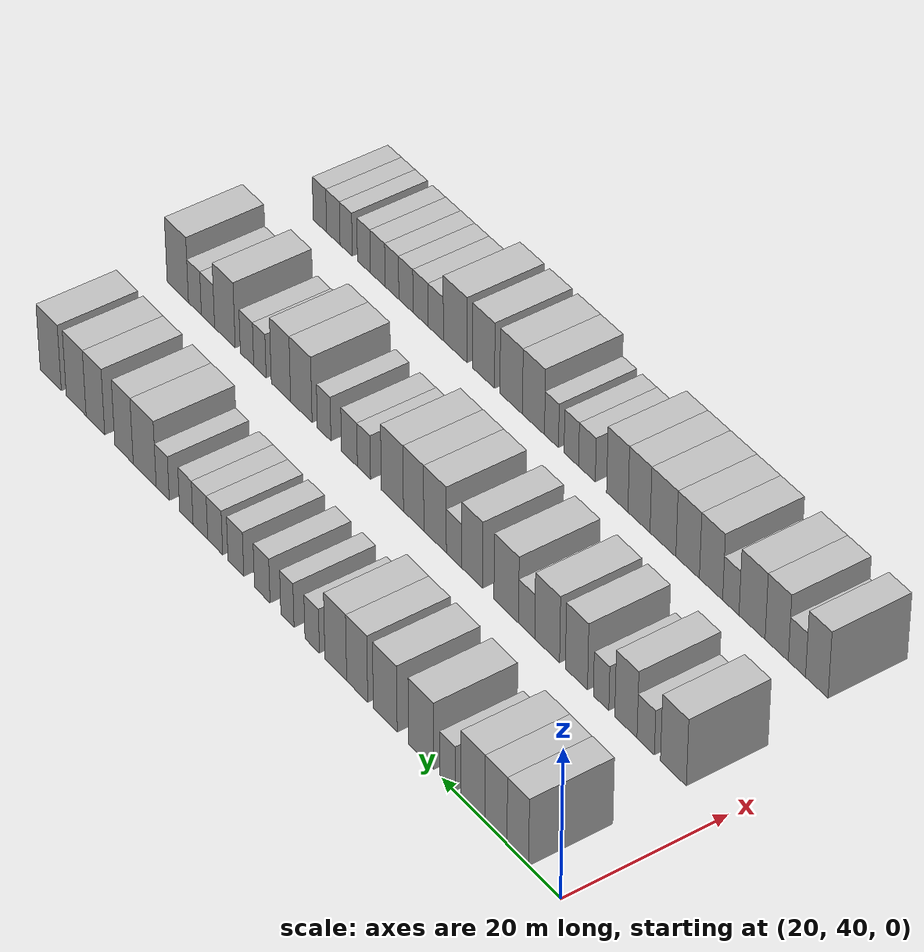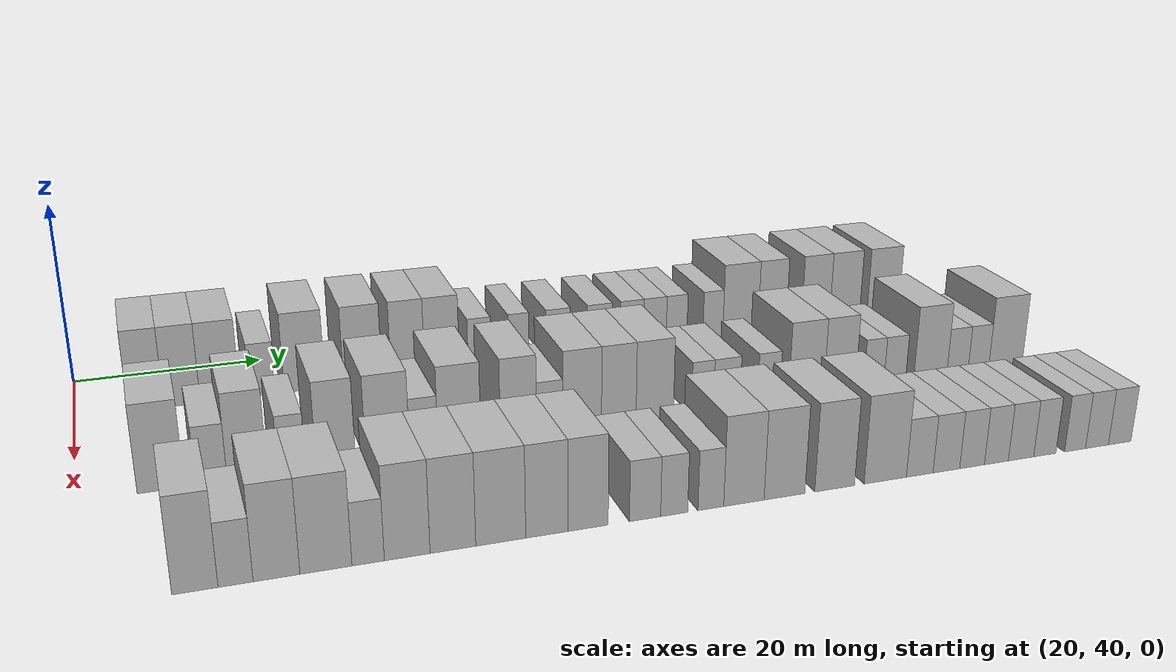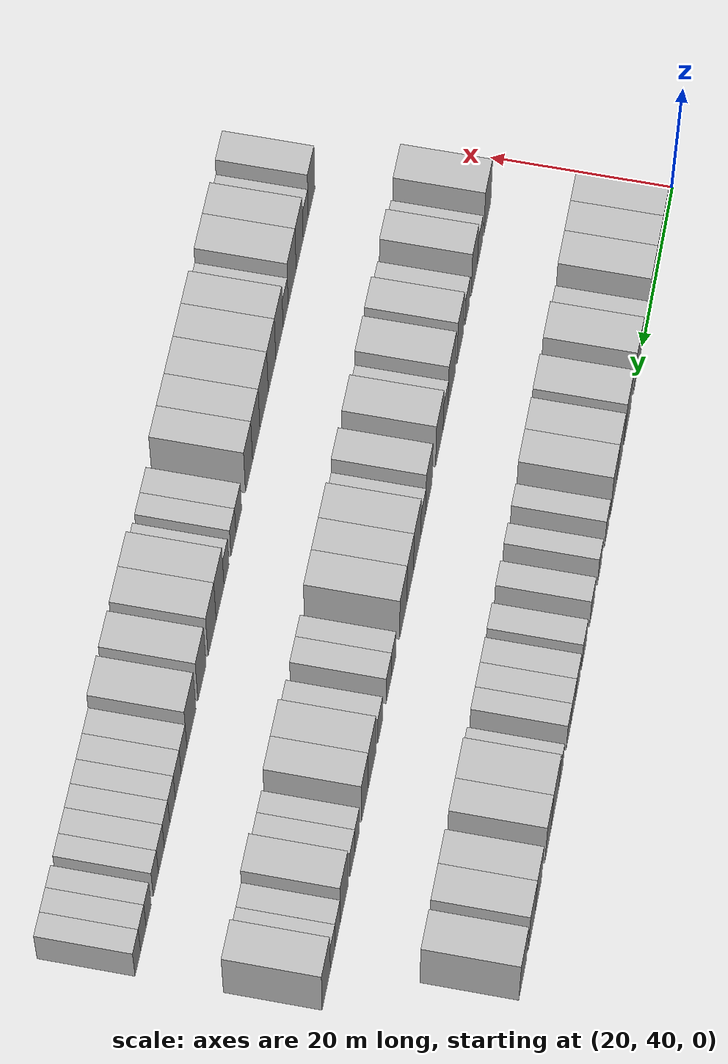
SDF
<sdf version="1.6">
 <world name="default">
  <model name="building_75">
   <static>1</static>
   <pose>25.0000 47.1595 0 0.000000 0.000000 0.000000</pose>
   <link name="link">
    <pose>0 0 4.50 0 0 0</pose>
    <collision name="collision"><geometry><box><size>10.0000 3.6271 9.0000</size></box></geometry></collision>
    <visual name="visual">
     <cast_shadows>0</cast_shadows>
     <geometry><box><size>10.0000 3.6271 9.0000</size></box></geometry>
     <material>
      <script>
       <uri>model://HANNAS_wall/materials/scripts</uri>
       <uri>model://HANNAS_wall/materials/textures</uri>
       <name>vrc/HANNAS_wall</name>
      </script>
     </material>
    </visual>
   </link>
  </model>
  <model name="building_76">
   <static>1</static>
   <pose>25.0000 50.8339 0 0.000000 0.000000 0.000000</pose>
   <link name="link">
    <pose>0 0 4.50 0 0 0</pose>
    <collision name="collision"><geometry><box><size>10.0000 3.7219 9.0000</size></box></geometry></collision>
    <visual name="visual">
     <cast_shadows>0</cast_shadows>
     <geometry><box><size>10.0000 3.7219 9.0000</size></box></geometry>
     <material>
      <script>
       <uri>model://HANNAS_wall/materials/scripts</uri>
       <uri>model://HANNAS_wall/materials/textures</uri>
       <name>vrc/HANNAS_wall</name>
      </script>
     </material>
    </visual>
   </link>
  </model>
  <model name="building_77">
   <static>1</static>
   <pose>25.0000 54.7527 0 0.000000 0.000000 0.000000</pose>
   <link name="link">
    <pose>0 0 4.50 0 0 0</pose>
    <collision name="collision"><geometry><box><size>10.0000 4.1156 9.0000</size></box></geometry></collision>
    <visual name="visual">
     <cast_shadows>0</cast_shadows>
     <geometry><box><size>10.0000 4.1156 9.0000</size></box></geometry>
     <material>
      <script>
       <uri>model://HANNAS_wall/materials/scripts</uri>
       <uri>model://HANNAS_wall/materials/textures</uri>
       <name>vrc/HANNAS_wall</name>
      </script>
     </material>
    </visual>
   </link>
  </model>
  <model name="building_78">
   <static>1</static>
   <pose>25.0000 59.1419 0 0.000000 0.000000 0.000000</pose>
   <link name="link">
    <pose>0 0 3.00 0 0 0</pose>
    <collision name="collision"><geometry><box><size>10.0000 2.6629 6.0000</size></box></geometry></collision>
    <visual name="visual">
     <cast_shadows>0</cast_shadows>
     <geometry><box><size>10.0000 2.6629 6.0000</size></box></geometry>
     <material>
      <script>
       <uri>model://HANNAS_wall/materials/scripts</uri>
       <uri>model://HANNAS_wall/materials/textures</uri>
       <name>vrc/HANNAS_wall</name>
      </script>
     </material>
    </visual>
   </link>
  </model>
  <model name="building_79">
   <static>1</static>
   <pose>25.0000 63.6639 0 0.000000 0.000000 0.000000</pose>
   <link name="link">
    <pose>0 0 4.50 0 0 0</pose>
    <collision name="collision"><geometry><box><size>10.0000 4.3811 9.0000</size></box></geometry></collision>
    <visual name="visual">
     <cast_shadows>0</cast_shadows>
     <geometry><box><size>10.0000 4.3811 9.0000</size></box></geometry>
     <material>
      <script>
       <uri>model://HANNAS_wall/materials/scripts</uri>
       <uri>model://HANNAS_wall/materials/textures</uri>
       <name>vrc/HANNAS_wall</name>
      </script>
     </material>
    </visual>
   </link>
  </model>
  <model name="building_80">
   <static>1</static>
   <pose>25.0000 69.9615 0 0.000000 0.000000 0.000000</pose>
   <link name="link">
    <pose>0 0 4.50 0 0 0</pose>
    <collision name="collision"><geometry><box><size>10.0000 4.2141 9.0000</size></box></geometry></collision>
    <visual name="visual">
     <cast_shadows>0</cast_shadows>
     <geometry><box><size>10.0000 4.2141 9.0000</size></box></geometry>
     <material>
      <script>
       <uri>model://HANNAS_wall/materials/scripts</uri>
       <uri>model://HANNAS_wall/materials/textures</uri>
       <name>vrc/HANNAS_wall</name>
      </script>
     </material>
    </visual>
   </link>
  </model>
  <model name="building_81">
   <static>1</static>
   <pose>25.0000 74.9460 0 0.000000 0.000000 0.000000</pose>
   <link name="link">
    <pose>0 0 4.50 0 0 0</pose>
    <collision name="collision"><geometry><box><size>10.0000 3.7549 9.0000</size></box></geometry></collision>
    <visual name="visual">
     <cast_shadows>0</cast_shadows>
     <geometry><box><size>10.0000 3.7549 9.0000</size></box></geometry>
     <material>
      <script>
       <uri>model://HANNAS_wall/materials/scripts</uri>
       <uri>model://HANNAS_wall/materials/textures</uri>
       <name>vrc/HANNAS_wall</name>
      </script>
     </material>
    </visual>
   </link>
  </model>
  <model name="building_82">
   <static>1</static>
   <pose>25.0000 78.7865 0 0.000000 0.000000 0.000000</pose>
   <link name="link">
    <pose>0 0 4.50 0 0 0</pose>
    <collision name="collision"><geometry><box><size>10.0000 3.9260 9.0000</size></box></geometry></collision>
    <visual name="visual">
     <cast_shadows>0</cast_shadows>
     <geometry><box><size>10.0000 3.9260 9.0000</size></box></geometry>
     <material>
      <script>
       <uri>model://HANNAS_wall/materials/scripts</uri>
       <uri>model://HANNAS_wall/materials/textures</uri>
       <name>vrc/HANNAS_wall</name>
      </script>
     </material>
    </visual>
   </link>
  </model>
  <model name="building_83">
   <static>1</static>
   <pose>25.0000 83.0642 0 0.000000 0.000000 0.000000</pose>
   <link name="link">
    <pose>0 0 3.00 0 0 0</pose>
    <collision name="collision"><geometry><box><size>10.0000 2.6295 6.0000</size></box></geometry></collision>
    <visual name="visual">
     <cast_shadows>0</cast_shadows>
     <geometry><box><size>10.0000 2.6295 6.0000</size></box></geometry>
     <material>
      <script>
       <uri>model://HANNAS_wall/materials/scripts</uri>
       <uri>model://HANNAS_wall/materials/textures</uri>
       <name>vrc/HANNAS_wall</name>
      </script>
     </material>
    </visual>
   </link>
  </model>
  <model name="building_84">
   <static>1</static>
   <pose>25.0000 87.5899 0 0.000000 0.000000 0.000000</pose>
   <link name="link">
    <pose>0 0 3.00 0 0 0</pose>
    <collision name="collision"><geometry><box><size>10.0000 2.4218 6.0000</size></box></geometry></collision>
    <visual name="visual">
     <cast_shadows>0</cast_shadows>
     <geometry><box><size>10.0000 2.4218 6.0000</size></box></geometry>
     <material>
      <script>
       <uri>model://HANNAS_wall/materials/scripts</uri>
       <uri>model://HANNAS_wall/materials/textures</uri>
       <name>vrc/HANNAS_wall</name>
      </script>
     </material>
    </visual>
   </link>
  </model>
  <model name="building_85">
   <static>1</static>
   <pose>25.0000 92.2433 0 0.000000 0.000000 0.000000</pose>
   <link name="link">
    <pose>0 0 3.00 0 0 0</pose>
    <collision name="collision"><geometry><box><size>10.0000 2.8849 6.0000</size></box></geometry></collision>
    <visual name="visual">
     <cast_shadows>0</cast_shadows>
     <geometry><box><size>10.0000 2.8849 6.0000</size></box></geometry>
     <material>
      <script>
       <uri>model://HANNAS_wall/materials/scripts</uri>
       <uri>model://HANNAS_wall/materials/textures</uri>
       <name>vrc/HANNAS_wall</name>
      </script>
     </material>
    </visual>
   </link>
  </model>
  <model name="building_86">
   <static>1</static>
   <pose>25.0000 97.1684 0 0.000000 0.000000 0.000000</pose>
   <link name="link">
    <pose>0 0 3.00 0 0 0</pose>
    <collision name="collision"><geometry><box><size>10.0000 2.9652 6.0000</size></box></geometry></collision>
    <visual name="visual">
     <cast_shadows>0</cast_shadows>
     <geometry><box><size>10.0000 2.9652 6.0000</size></box></geometry>
     <material>
      <script>
       <uri>model://HANNAS_wall/materials/scripts</uri>
       <uri>model://HANNAS_wall/materials/textures</uri>
       <name>vrc/HANNAS_wall</name>
      </script>
     </material>
    </visual>
   </link>
  </model>
  <model name="building_87">
   <static>1</static>
   <pose>25.0000 101.0687 0 0.000000 0.000000 0.000000</pose>
   <link name="link">
    <pose>0 0 3.00 0 0 0</pose>
    <collision name="collision"><geometry><box><size>10.0000 2.8354 6.0000</size></box></geometry></collision>
    <visual name="visual">
     <cast_shadows>0</cast_shadows>
     <geometry><box><size>10.0000 2.8354 6.0000</size></box></geometry>
     <material>
      <script>
       <uri>model://HANNAS_wall/materials/scripts</uri>
       <uri>model://HANNAS_wall/materials/textures</uri>
       <name>vrc/HANNAS_wall</name>
      </script>
     </material>
    </visual>
   </link>
  </model>
  <model name="building_88">
   <static>1</static>
   <pose>25.0000 103.8853 0 0.000000 0.000000 0.000000</pose>
   <link name="link">
    <pose>0 0 3.00 0 0 0</pose>
    <collision name="collision"><geometry><box><size>10.0000 2.7978 6.0000</size></box></geometry></collision>
    <visual name="visual">
     <cast_shadows>0</cast_shadows>
     <geometry><box><size>10.0000 2.7978 6.0000</size></box></geometry>
     <material>
      <script>
       <uri>model://HANNAS_wall/materials/scripts</uri>
       <uri>model://HANNAS_wall/materials/textures</uri>
       <name>vrc/HANNAS_wall</name>
      </script>
     </material>
    </visual>
   </link>
  </model>
  <model name="building_89">
   <static>1</static>
   <pose>25.0000 106.5710 0 0.000000 0.000000 0.000000</pose>
   <link name="link">
    <pose>0 0 3.00 0 0 0</pose>
    <collision name="collision"><geometry><box><size>10.0000 2.5735 6.0000</size></box></geometry></collision>
    <visual name="visual">
     <cast_shadows>0</cast_shadows>
     <geometry><box><size>10.0000 2.5735 6.0000</size></box></geometry>
     <material>
      <script>
       <uri>model://HANNAS_wall/materials/scripts</uri>
       <uri>model://HANNAS_wall/materials/textures</uri>
       <name>vrc/HANNAS_wall</name>
      </script>
     </material>
    </visual>
   </link>
  </model>
  <model name="building_90">
   <static>1</static>
   <pose>25.0000 111.1202 0 0.000000 0.000000 0.000000</pose>
   <link name="link">
    <pose>0 0 3.00 0 0 0</pose>
    <collision name="collision"><geometry><box><size>10.0000 2.5249 6.0000</size></box></geometry></collision>
    <visual name="visual">
     <cast_shadows>0</cast_shadows>
     <geometry><box><size>10.0000 2.5249 6.0000</size></box></geometry>
     <material>
      <script>
       <uri>model://HANNAS_wall/materials/scripts</uri>
       <uri>model://HANNAS_wall/materials/textures</uri>
       <name>vrc/HANNAS_wall</name>
      </script>
     </material>
    </visual>
   </link>
  </model>
  <model name="building_91">
   <static>1</static>
   <pose>25.0000 114.6291 0 0.000000 0.000000 0.000000</pose>
   <link name="link">
    <pose>0 0 4.50 0 0 0</pose>
    <collision name="collision"><geometry><box><size>10.0000 4.4929 9.0000</size></box></geometry></collision>
    <visual name="visual">
     <cast_shadows>0</cast_shadows>
     <geometry><box><size>10.0000 4.4929 9.0000</size></box></geometry>
     <material>
      <script>
       <uri>model://HANNAS_wall/materials/scripts</uri>
       <uri>model://HANNAS_wall/materials/textures</uri>
       <name>vrc/HANNAS_wall</name>
      </script>
     </material>
    </visual>
   </link>
  </model>
  <model name="building_92">
   <static>1</static>
   <pose>25.0000 118.6929 0 0.000000 0.000000 0.000000</pose>
   <link name="link">
    <pose>0 0 4.50 0 0 0</pose>
    <collision name="collision"><geometry><box><size>10.0000 3.6348 9.0000</size></box></geometry></collision>
    <visual name="visual">
     <cast_shadows>0</cast_shadows>
     <geometry><box><size>10.0000 3.6348 9.0000</size></box></geometry>
     <material>
      <script>
       <uri>model://HANNAS_wall/materials/scripts</uri>
       <uri>model://HANNAS_wall/materials/textures</uri>
       <name>vrc/HANNAS_wall</name>
      </script>
     </material>
    </visual>
   </link>
  </model>
  <model name="building_93">
   <static>1</static>
   <pose>25.0000 124.3684 0 0.000000 0.000000 0.000000</pose>
   <link name="link">
    <pose>0 0 4.50 0 0 0</pose>
    <collision name="collision"><geometry><box><size>10.0000 3.7161 9.0000</size></box></geometry></collision>
    <visual name="visual">
     <cast_shadows>0</cast_shadows>
     <geometry><box><size>10.0000 3.7161 9.0000</size></box></geometry>
     <material>
      <script>
       <uri>model://HANNAS_wall/materials/scripts</uri>
       <uri>model://HANNAS_wall/materials/textures</uri>
       <name>vrc/HANNAS_wall</name>
      </script>
     </material>
    </visual>
   </link>
  </model>
  <model name="building_94">
   <static>1</static>
   <pose>25.0000 128.2215 0 0.000000 0.000000 0.000000</pose>
   <link name="link">
    <pose>0 0 4.50 0 0 0</pose>
    <collision name="collision"><geometry><box><size>10.0000 3.9901 9.0000</size></box></geometry></collision>
    <visual name="visual">
     <cast_shadows>0</cast_shadows>
     <geometry><box><size>10.0000 3.9901 9.0000</size></box></geometry>
     <material>
      <script>
       <uri>model://HANNAS_wall/materials/scripts</uri>
       <uri>model://HANNAS_wall/materials/textures</uri>
       <name>vrc/HANNAS_wall</name>
      </script>
     </material>
    </visual>
   </link>
  </model>
  <model name="building_95">
   <static>1</static>
   <pose>25.0000 133.3611 0 0.000000 0.000000 0.000000</pose>
   <link name="link">
    <pose>0 0 4.50 0 0 0</pose>
    <collision name="collision"><geometry><box><size>10.0000 4.2892 9.0000</size></box></geometry></collision>
    <visual name="visual">
     <cast_shadows>0</cast_shadows>
     <geometry><box><size>10.0000 4.2892 9.0000</size></box></geometry>
     <material>
      <script>
       <uri>model://HANNAS_wall/materials/scripts</uri>
       <uri>model://HANNAS_wall/materials/textures</uri>
       <name>vrc/HANNAS_wall</name>
      </script>
     </material>
    </visual>
   </link>
  </model>
  <model name="building_189">
   <static>1</static>
   <pose>44.0000 47.6561 0 0.000000 0.000000 0.000000</pose>
   <link name="link">
    <pose>0 0 4.50 0 0 0</pose>
    <collision name="collision"><geometry><box><size>10.0000 4.2817 9.0000</size></box></geometry></collision>
    <visual name="visual">
     <cast_shadows>0</cast_shadows>
     <geometry><box><size>10.0000 4.2817 9.0000</size></box></geometry>
     <material>
      <script>
       <uri>model://HANNAS_wall/materials/scripts</uri>
       <uri>model://HANNAS_wall/materials/textures</uri>
       <name>vrc/HANNAS_wall</name>
      </script>
     </material>
    </visual>
   </link>
  </model>
  <model name="building_190">
   <static>1</static>
   <pose>44.0000 52.2490 0 0.000000 0.000000 0.000000</pose>
   <link name="link">
    <pose>0 0 3.00 0 0 0</pose>
    <collision name="collision"><geometry><box><size>10.0000 2.9040 6.0000</size></box></geometry></collision>
    <visual name="visual">
     <cast_shadows>0</cast_shadows>
     <geometry><box><size>10.0000 2.9040 6.0000</size></box></geometry>
     <material>
      <script>
       <uri>model://HANNAS_wall/materials/scripts</uri>
       <uri>model://HANNAS_wall/materials/textures</uri>
       <name>vrc/HANNAS_wall</name>
      </script>
     </material>
    </visual>
   </link>
  </model>
  <model name="building_191">
   <static>1</static>
   <pose>44.0000 55.5740 0 0.000000 0.000000 0.000000</pose>
   <link name="link">
    <pose>0 0 4.50 0 0 0</pose>
    <collision name="collision"><geometry><box><size>10.0000 3.7461 9.0000</size></box></geometry></collision>
    <visual name="visual">
     <cast_shadows>0</cast_shadows>
     <geometry><box><size>10.0000 3.7461 9.0000</size></box></geometry>
     <material>
      <script>
       <uri>model://HANNAS_wall/materials/scripts</uri>
       <uri>model://HANNAS_wall/materials/textures</uri>
       <name>vrc/HANNAS_wall</name>
      </script>
     </material>
    </visual>
   </link>
  </model>
  <model name="building_192">
   <static>1</static>
   <pose>44.0000 59.7589 0 0.000000 0.000000 0.000000</pose>
   <link name="link">
    <pose>0 0 3.00 0 0 0</pose>
    <collision name="collision"><geometry><box><size>10.0000 2.6236 6.0000</size></box></geometry></collision>
    <visual name="visual">
     <cast_shadows>0</cast_shadows>
     <geometry><box><size>10.0000 2.6236 6.0000</size></box></geometry>
     <material>
      <script>
       <uri>model://HANNAS_wall/materials/scripts</uri>
       <uri>model://HANNAS_wall/materials/textures</uri>
       <name>vrc/HANNAS_wall</name>
      </script>
     </material>
    </visual>
   </link>
  </model>
  <model name="building_193">
   <static>1</static>
   <pose>44.0000 63.9661 0 0.000000 0.000000 0.000000</pose>
   <link name="link">
    <pose>0 0 4.50 0 0 0</pose>
    <collision name="collision"><geometry><box><size>10.0000 3.7908 9.0000</size></box></geometry></collision>
    <visual name="visual">
     <cast_shadows>0</cast_shadows>
     <geometry><box><size>10.0000 3.7908 9.0000</size></box></geometry>
     <material>
      <script>
       <uri>model://HANNAS_wall/materials/scripts</uri>
       <uri>model://HANNAS_wall/materials/textures</uri>
       <name>vrc/HANNAS_wall</name>
      </script>
     </material>
    </visual>
   </link>
  </model>
  <model name="building_194">
   <static>1</static>
   <pose>44.0000 69.0152 0 0.000000 0.000000 0.000000</pose>
   <link name="link">
    <pose>0 0 4.50 0 0 0</pose>
    <collision name="collision"><geometry><box><size>10.0000 4.3074 9.0000</size></box></geometry></collision>
    <visual name="visual">
     <cast_shadows>0</cast_shadows>
     <geometry><box><size>10.0000 4.3074 9.0000</size></box></geometry>
     <material>
      <script>
       <uri>model://HANNAS_wall/materials/scripts</uri>
       <uri>model://HANNAS_wall/materials/textures</uri>
       <name>vrc/HANNAS_wall</name>
      </script>
     </material>
    </visual>
   </link>
  </model>
  <model name="building_195">
   <static>1</static>
   <pose>44.0000 72.5831 0 0.000000 0.000000 0.000000</pose>
   <link name="link">
    <pose>0 0 3.00 0 0 0</pose>
    <collision name="collision"><geometry><box><size>10.0000 2.8285 6.0000</size></box></geometry></collision>
    <visual name="visual">
     <cast_shadows>0</cast_shadows>
     <geometry><box><size>10.0000 2.8285 6.0000</size></box></geometry>
     <material>
      <script>
       <uri>model://HANNAS_wall/materials/scripts</uri>
       <uri>model://HANNAS_wall/materials/textures</uri>
       <name>vrc/HANNAS_wall</name>
      </script>
     </material>
    </visual>
   </link>
  </model>
  <model name="building_196">
   <static>1</static>
   <pose>44.0000 76.1656 0 0.000000 0.000000 0.000000</pose>
   <link name="link">
    <pose>0 0 4.50 0 0 0</pose>
    <collision name="collision"><geometry><box><size>10.0000 4.3363 9.0000</size></box></geometry></collision>
    <visual name="visual">
     <cast_shadows>0</cast_shadows>
     <geometry><box><size>10.0000 4.3363 9.0000</size></box></geometry>
     <material>
      <script>
       <uri>model://HANNAS_wall/materials/scripts</uri>
       <uri>model://HANNAS_wall/materials/textures</uri>
       <name>vrc/HANNAS_wall</name>
      </script>
     </material>
    </visual>
   </link>
  </model>
  <model name="building_197">
   <static>1</static>
   <pose>44.0000 82.2029 0 0.000000 0.000000 0.000000</pose>
   <link name="link">
    <pose>0 0 4.50 0 0 0</pose>
    <collision name="collision"><geometry><box><size>10.0000 3.7384 9.0000</size></box></geometry></collision>
    <visual name="visual">
     <cast_shadows>0</cast_shadows>
     <geometry><box><size>10.0000 3.7384 9.0000</size></box></geometry>
     <material>
      <script>
       <uri>model://HANNAS_wall/materials/scripts</uri>
       <uri>model://HANNAS_wall/materials/textures</uri>
       <name>vrc/HANNAS_wall</name>
      </script>
     </material>
    </visual>
   </link>
  </model>
  <model name="building_198">
   <static>1</static>
   <pose>44.0000 85.4566 0 0.000000 0.000000 0.000000</pose>
   <link name="link">
    <pose>0 0 3.00 0 0 0</pose>
    <collision name="collision"><geometry><box><size>10.0000 2.7690 6.0000</size></box></geometry></collision>
    <visual name="visual">
     <cast_shadows>0</cast_shadows>
     <geometry><box><size>10.0000 2.7690 6.0000</size></box></geometry>
     <material>
      <script>
       <uri>model://HANNAS_wall/materials/scripts</uri>
       <uri>model://HANNAS_wall/materials/textures</uri>
       <name>vrc/HANNAS_wall</name>
      </script>
     </material>
    </visual>
   </link>
  </model>
  <model name="building_199">
   <static>1</static>
   <pose>44.0000 88.8815 0 0.000000 0.000000 0.000000</pose>
   <link name="link">
    <pose>0 0 4.50 0 0 0</pose>
    <collision name="collision"><geometry><box><size>10.0000 4.0808 9.0000</size></box></geometry></collision>
    <visual name="visual">
     <cast_shadows>0</cast_shadows>
     <geometry><box><size>10.0000 4.0808 9.0000</size></box></geometry>
     <material>
      <script>
       <uri>model://HANNAS_wall/materials/scripts</uri>
       <uri>model://HANNAS_wall/materials/textures</uri>
       <name>vrc/HANNAS_wall</name>
      </script>
     </material>
    </visual>
   </link>
  </model>
  <model name="building_200">
   <static>1</static>
   <pose>44.0000 92.7878 0 0.000000 0.000000 0.000000</pose>
   <link name="link">
    <pose>0 0 4.50 0 0 0</pose>
    <collision name="collision"><geometry><box><size>10.0000 3.7319 9.0000</size></box></geometry></collision>
    <visual name="visual">
     <cast_shadows>0</cast_shadows>
     <geometry><box><size>10.0000 3.7319 9.0000</size></box></geometry>
     <material>
      <script>
       <uri>model://HANNAS_wall/materials/scripts</uri>
       <uri>model://HANNAS_wall/materials/textures</uri>
       <name>vrc/HANNAS_wall</name>
      </script>
     </material>
    </visual>
   </link>
  </model>
  <model name="building_201">
   <static>1</static>
   <pose>44.0000 96.6963 0 0.000000 0.000000 0.000000</pose>
   <link name="link">
    <pose>0 0 4.50 0 0 0</pose>
    <collision name="collision"><geometry><box><size>10.0000 4.0850 9.0000</size></box></geometry></collision>
    <visual name="visual">
     <cast_shadows>0</cast_shadows>
     <geometry><box><size>10.0000 4.0850 9.0000</size></box></geometry>
     <material>
      <script>
       <uri>model://HANNAS_wall/materials/scripts</uri>
       <uri>model://HANNAS_wall/materials/textures</uri>
       <name>vrc/HANNAS_wall</name>
      </script>
     </material>
    </visual>
   </link>
  </model>
  <model name="building_202">
   <static>1</static>
   <pose>44.0000 101.9654 0 0.000000 0.000000 0.000000</pose>
   <link name="link">
    <pose>0 0 3.00 0 0 0</pose>
    <collision name="collision"><geometry><box><size>10.0000 2.4532 6.0000</size></box></geometry></collision>
    <visual name="visual">
     <cast_shadows>0</cast_shadows>
     <geometry><box><size>10.0000 2.4532 6.0000</size></box></geometry>
     <material>
      <script>
       <uri>model://HANNAS_wall/materials/scripts</uri>
       <uri>model://HANNAS_wall/materials/textures</uri>
       <name>vrc/HANNAS_wall</name>
      </script>
     </material>
    </visual>
   </link>
  </model>
  <model name="building_203">
   <static>1</static>
   <pose>44.0000 104.6813 0 0.000000 0.000000 0.000000</pose>
   <link name="link">
    <pose>0 0 3.00 0 0 0</pose>
    <collision name="collision"><geometry><box><size>10.0000 2.9785 6.0000</size></box></geometry></collision>
    <visual name="visual">
     <cast_shadows>0</cast_shadows>
     <geometry><box><size>10.0000 2.9785 6.0000</size></box></geometry>
     <material>
      <script>
       <uri>model://HANNAS_wall/materials/scripts</uri>
       <uri>model://HANNAS_wall/materials/textures</uri>
       <name>vrc/HANNAS_wall</name>
      </script>
     </material>
    </visual>
   </link>
  </model>
  <model name="building_204">
   <static>1</static>
   <pose>44.0000 109.4610 0 0.000000 0.000000 0.000000</pose>
   <link name="link">
    <pose>0 0 3.00 0 0 0</pose>
    <collision name="collision"><geometry><box><size>10.0000 2.5809 6.0000</size></box></geometry></collision>
    <visual name="visual">
     <cast_shadows>0</cast_shadows>
     <geometry><box><size>10.0000 2.5809 6.0000</size></box></geometry>
     <material>
      <script>
       <uri>model://HANNAS_wall/materials/scripts</uri>
       <uri>model://HANNAS_wall/materials/textures</uri>
       <name>vrc/HANNAS_wall</name>
      </script>
     </material>
    </visual>
   </link>
  </model>
  <model name="building_205">
   <static>1</static>
   <pose>44.0000 113.8031 0 0.000000 0.000000 0.000000</pose>
   <link name="link">
    <pose>0 0 4.50 0 0 0</pose>
    <collision name="collision"><geometry><box><size>10.0000 4.1033 9.0000</size></box></geometry></collision>
    <visual name="visual">
     <cast_shadows>0</cast_shadows>
     <geometry><box><size>10.0000 4.1033 9.0000</size></box></geometry>
     <material>
      <script>
       <uri>model://HANNAS_wall/materials/scripts</uri>
       <uri>model://HANNAS_wall/materials/textures</uri>
       <name>vrc/HANNAS_wall</name>
      </script>
     </material>
    </visual>
   </link>
  </model>
  <model name="building_206">
   <static>1</static>
   <pose>44.0000 117.7238 0 0.000000 0.000000 0.000000</pose>
   <link name="link">
    <pose>0 0 4.50 0 0 0</pose>
    <collision name="collision"><geometry><box><size>10.0000 3.7382 9.0000</size></box></geometry></collision>
    <visual name="visual">
     <cast_shadows>0</cast_shadows>
     <geometry><box><size>10.0000 3.7382 9.0000</size></box></geometry>
     <material>
      <script>
       <uri>model://HANNAS_wall/materials/scripts</uri>
       <uri>model://HANNAS_wall/materials/textures</uri>
       <name>vrc/HANNAS_wall</name>
      </script>
     </material>
    </visual>
   </link>
  </model>
  <model name="building_207">
   <static>1</static>
   <pose>44.0000 121.8041 0 0.000000 0.000000 0.000000</pose>
   <link name="link">
    <pose>0 0 3.00 0 0 0</pose>
    <collision name="collision"><geometry><box><size>10.0000 2.4222 6.0000</size></box></geometry></collision>
    <visual name="visual">
     <cast_shadows>0</cast_shadows>
     <geometry><box><size>10.0000 2.4222 6.0000</size></box></geometry>
     <material>
      <script>
       <uri>model://HANNAS_wall/materials/scripts</uri>
       <uri>model://HANNAS_wall/materials/textures</uri>
       <name>vrc/HANNAS_wall</name>
      </script>
     </material>
    </visual>
   </link>
  </model>
  <model name="building_208">
   <static>1</static>
   <pose>44.0000 124.3262 0 0.000000 0.000000 0.000000</pose>
   <link name="link">
    <pose>0 0 3.00 0 0 0</pose>
    <collision name="collision"><geometry><box><size>10.0000 2.6221 6.0000</size></box></geometry></collision>
    <visual name="visual">
     <cast_shadows>0</cast_shadows>
     <geometry><box><size>10.0000 2.6221 6.0000</size></box></geometry>
     <material>
      <script>
       <uri>model://HANNAS_wall/materials/scripts</uri>
       <uri>model://HANNAS_wall/materials/textures</uri>
       <name>vrc/HANNAS_wall</name>
      </script>
     </material>
    </visual>
   </link>
  </model>
  <model name="building_209">
   <static>1</static>
   <pose>44.0000 128.6766 0 0.000000 0.000000 0.000000</pose>
   <link name="link">
    <pose>0 0 4.50 0 0 0</pose>
    <collision name="collision"><geometry><box><size>10.0000 4.0786 9.0000</size></box></geometry></collision>
    <visual name="visual">
     <cast_shadows>0</cast_shadows>
     <geometry><box><size>10.0000 4.0786 9.0000</size></box></geometry>
     <material>
      <script>
       <uri>model://HANNAS_wall/materials/scripts</uri>
       <uri>model://HANNAS_wall/materials/textures</uri>
       <name>vrc/HANNAS_wall</name>
      </script>
     </material>
    </visual>
   </link>
  </model>
  <model name="building_210">
   <static>1</static>
   <pose>44.0000 132.0354 0 0.000000 0.000000 0.000000</pose>
   <link name="link">
    <pose>0 0 3.00 0 0 0</pose>
    <collision name="collision"><geometry><box><size>10.0000 2.6389 6.0000</size></box></geometry></collision>
    <visual name="visual">
     <cast_shadows>0</cast_shadows>
     <geometry><box><size>10.0000 2.6389 6.0000</size></box></geometry>
     <material>
      <script>
       <uri>model://HANNAS_wall/materials/scripts</uri>
       <uri>model://HANNAS_wall/materials/textures</uri>
       <name>vrc/HANNAS_wall</name>
      </script>
     </material>
    </visual>
   </link>
  </model>
  <model name="building_211">
   <static>1</static>
   <pose>44.0000 134.6500 0 0.000000 0.000000 0.000000</pose>
   <link name="link">
    <pose>0 0 3.00 0 0 0</pose>
    <collision name="collision"><geometry><box><size>10.0000 2.5901 6.0000</size></box></geometry></collision>
    <visual name="visual">
     <cast_shadows>0</cast_shadows>
     <geometry><box><size>10.0000 2.5901 6.0000</size></box></geometry>
     <material>
      <script>
       <uri>model://HANNAS_wall/materials/scripts</uri>
       <uri>model://HANNAS_wall/materials/textures</uri>
       <name>vrc/HANNAS_wall</name>
      </script>
     </material>
    </visual>
   </link>
  </model>
  <model name="building_212">
   <static>1</static>
   <pose>44.0000 138.0804 0 0.000000 0.000000 0.000000</pose>
   <link name="link">
    <pose>0 0 4.50 0 0 0</pose>
    <collision name="collision"><geometry><box><size>10.0000 4.2708 9.0000</size></box></geometry></collision>
    <visual name="visual">
     <cast_shadows>0</cast_shadows>
     <geometry><box><size>10.0000 4.2708 9.0000</size></box></geometry>
     <material>
      <script>
       <uri>model://HANNAS_wall/materials/scripts</uri>
       <uri>model://HANNAS_wall/materials/textures</uri>
       <name>vrc/HANNAS_wall</name>
      </script>
     </material>
    </visual>
   </link>
  </model>
  <model name="building_302">
   <static>1</static>
   <pose>63.0000 49.3281 0 0.000000 0.000000 0.000000</pose>
   <link name="link">
    <pose>0 0 4.50 0 0 0</pose>
    <collision name="collision"><geometry><box><size>10.0000 3.6939 9.0000</size></box></geometry></collision>
    <visual name="visual">
     <cast_shadows>0</cast_shadows>
     <geometry><box><size>10.0000 3.6939 9.0000</size></box></geometry>
     <material>
      <script>
       <uri>model://HANNAS_wall/materials/scripts</uri>
       <uri>model://HANNAS_wall/materials/textures</uri>
       <name>vrc/HANNAS_wall</name>
      </script>
     </material>
    </visual>
   </link>
  </model>
  <model name="building_303">
   <static>1</static>
   <pose>63.0000 52.5943 0 0.000000 0.000000 0.000000</pose>
   <link name="link">
    <pose>0 0 3.00 0 0 0</pose>
    <collision name="collision"><geometry><box><size>10.0000 2.8384 6.0000</size></box></geometry></collision>
    <visual name="visual">
     <cast_shadows>0</cast_shadows>
     <geometry><box><size>10.0000 2.8384 6.0000</size></box></geometry>
     <material>
      <script>
       <uri>model://HANNAS_wall/materials/scripts</uri>
       <uri>model://HANNAS_wall/materials/textures</uri>
       <name>vrc/HANNAS_wall</name>
      </script>
     </material>
    </visual>
   </link>
  </model>
  <model name="building_304">
   <static>1</static>
   <pose>63.0000 55.9401 0 0.000000 0.000000 0.000000</pose>
   <link name="link">
    <pose>0 0 4.50 0 0 0</pose>
    <collision name="collision"><geometry><box><size>10.0000 3.8533 9.0000</size></box></geometry></collision>
    <visual name="visual">
     <cast_shadows>0</cast_shadows>
     <geometry><box><size>10.0000 3.8533 9.0000</size></box></geometry>
     <material>
      <script>
       <uri>model://HANNAS_wall/materials/scripts</uri>
       <uri>model://HANNAS_wall/materials/textures</uri>
       <name>vrc/HANNAS_wall</name>
      </script>
     </material>
    </visual>
   </link>
  </model>
  <model name="building_305">
   <static>1</static>
   <pose>63.0000 60.0527 0 0.000000 0.000000 0.000000</pose>
   <link name="link">
    <pose>0 0 4.50 0 0 0</pose>
    <collision name="collision"><geometry><box><size>10.0000 4.3719 9.0000</size></box></geometry></collision>
    <visual name="visual">
     <cast_shadows>0</cast_shadows>
     <geometry><box><size>10.0000 4.3719 9.0000</size></box></geometry>
     <material>
      <script>
       <uri>model://HANNAS_wall/materials/scripts</uri>
       <uri>model://HANNAS_wall/materials/textures</uri>
       <name>vrc/HANNAS_wall</name>
      </script>
     </material>
    </visual>
   </link>
  </model>
  <model name="building_306">
   <static>1</static>
   <pose>63.0000 63.6186 0 0.000000 0.000000 0.000000</pose>
   <link name="link">
    <pose>0 0 3.00 0 0 0</pose>
    <collision name="collision"><geometry><box><size>10.0000 2.7598 6.0000</size></box></geometry></collision>
    <visual name="visual">
     <cast_shadows>0</cast_shadows>
     <geometry><box><size>10.0000 2.7598 6.0000</size></box></geometry>
     <material>
      <script>
       <uri>model://HANNAS_wall/materials/scripts</uri>
       <uri>model://HANNAS_wall/materials/textures</uri>
       <name>vrc/HANNAS_wall</name>
      </script>
     </material>
    </visual>
   </link>
  </model>
  <model name="building_307">
   <static>1</static>
   <pose>63.0000 66.9793 0 0.000000 0.000000 0.000000</pose>
   <link name="link">
    <pose>0 0 4.50 0 0 0</pose>
    <collision name="collision"><geometry><box><size>10.0000 3.9616 9.0000</size></box></geometry></collision>
    <visual name="visual">
     <cast_shadows>0</cast_shadows>
     <geometry><box><size>10.0000 3.9616 9.0000</size></box></geometry>
     <material>
      <script>
       <uri>model://HANNAS_wall/materials/scripts</uri>
       <uri>model://HANNAS_wall/materials/textures</uri>
       <name>vrc/HANNAS_wall</name>
      </script>
     </material>
    </visual>
   </link>
  </model>
  <model name="building_308">
   <static>1</static>
   <pose>63.0000 70.9747 0 0.000000 0.000000 0.000000</pose>
   <link name="link">
    <pose>0 0 4.50 0 0 0</pose>
    <collision name="collision"><geometry><box><size>10.0000 4.0291 9.0000</size></box></geometry></collision>
    <visual name="visual">
     <cast_shadows>0</cast_shadows>
     <geometry><box><size>10.0000 4.0291 9.0000</size></box></geometry>
     <material>
      <script>
       <uri>model://HANNAS_wall/materials/scripts</uri>
       <uri>model://HANNAS_wall/materials/textures</uri>
       <name>vrc/HANNAS_wall</name>
      </script>
     </material>
    </visual>
   </link>
  </model>
  <model name="building_309">
   <static>1</static>
   <pose>63.0000 75.2334 0 0.000000 0.000000 0.000000</pose>
   <link name="link">
    <pose>0 0 4.50 0 0 0</pose>
    <collision name="collision"><geometry><box><size>10.0000 4.4883 9.0000</size></box></geometry></collision>
    <visual name="visual">
     <cast_shadows>0</cast_shadows>
     <geometry><box><size>10.0000 4.4883 9.0000</size></box></geometry>
     <material>
      <script>
       <uri>model://HANNAS_wall/materials/scripts</uri>
       <uri>model://HANNAS_wall/materials/textures</uri>
       <name>vrc/HANNAS_wall</name>
      </script>
     </material>
    </visual>
   </link>
  </model>
  <model name="building_310">
   <static>1</static>
   <pose>63.0000 79.4093 0 0.000000 0.000000 0.000000</pose>
   <link name="link">
    <pose>0 0 4.50 0 0 0</pose>
    <collision name="collision"><geometry><box><size>10.0000 3.8636 9.0000</size></box></geometry></collision>
    <visual name="visual">
     <cast_shadows>0</cast_shadows>
     <geometry><box><size>10.0000 3.8636 9.0000</size></box></geometry>
     <material>
      <script>
       <uri>model://HANNAS_wall/materials/scripts</uri>
       <uri>model://HANNAS_wall/materials/textures</uri>
       <name>vrc/HANNAS_wall</name>
      </script>
     </material>
    </visual>
   </link>
  </model>
  <model name="building_311">
   <static>1</static>
   <pose>63.0000 83.2183 0 0.000000 0.000000 0.000000</pose>
   <link name="link">
    <pose>0 0 4.50 0 0 0</pose>
    <collision name="collision"><geometry><box><size>10.0000 3.7544 9.0000</size></box></geometry></collision>
    <visual name="visual">
     <cast_shadows>0</cast_shadows>
     <geometry><box><size>10.0000 3.7544 9.0000</size></box></geometry>
     <material>
      <script>
       <uri>model://HANNAS_wall/materials/scripts</uri>
       <uri>model://HANNAS_wall/materials/textures</uri>
       <name>vrc/HANNAS_wall</name>
      </script>
     </material>
    </visual>
   </link>
  </model>
  <model name="building_312">
   <static>1</static>
   <pose>63.0000 88.5864 0 0.000000 0.000000 0.000000</pose>
   <link name="link">
    <pose>0 0 3.00 0 0 0</pose>
    <collision name="collision"><geometry><box><size>10.0000 2.9817 6.0000</size></box></geometry></collision>
    <visual name="visual">
     <cast_shadows>0</cast_shadows>
     <geometry><box><size>10.0000 2.9817 6.0000</size></box></geometry>
     <material>
      <script>
       <uri>model://HANNAS_wall/materials/scripts</uri>
       <uri>model://HANNAS_wall/materials/textures</uri>
       <name>vrc/HANNAS_wall</name>
      </script>
     </material>
    </visual>
   </link>
  </model>
  <model name="building_313">
   <static>1</static>
   <pose>63.0000 91.3820 0 0.000000 0.000000 0.000000</pose>
   <link name="link">
    <pose>0 0 3.00 0 0 0</pose>
    <collision name="collision"><geometry><box><size>10.0000 2.6096 6.0000</size></box></geometry></collision>
    <visual name="visual">
     <cast_shadows>0</cast_shadows>
     <geometry><box><size>10.0000 2.6096 6.0000</size></box></geometry>
     <material>
      <script>
       <uri>model://HANNAS_wall/materials/scripts</uri>
       <uri>model://HANNAS_wall/materials/textures</uri>
       <name>vrc/HANNAS_wall</name>
      </script>
     </material>
    </visual>
   </link>
  </model>
  <model name="building_314">
   <static>1</static>
   <pose>63.0000 94.9517 0 0.000000 0.000000 0.000000</pose>
   <link name="link">
    <pose>0 0 3.00 0 0 0</pose>
    <collision name="collision"><geometry><box><size>10.0000 2.5298 6.0000</size></box></geometry></collision>
    <visual name="visual">
     <cast_shadows>0</cast_shadows>
     <geometry><box><size>10.0000 2.5298 6.0000</size></box></geometry>
     <material>
      <script>
       <uri>model://HANNAS_wall/materials/scripts</uri>
       <uri>model://HANNAS_wall/materials/textures</uri>
       <name>vrc/HANNAS_wall</name>
      </script>
     </material>
    </visual>
   </link>
  </model>
  <model name="building_315">
   <static>1</static>
   <pose>63.0000 98.2256 0 0.000000 0.000000 0.000000</pose>
   <link name="link">
    <pose>0 0 4.50 0 0 0</pose>
    <collision name="collision"><geometry><box><size>10.0000 4.0181 9.0000</size></box></geometry></collision>
    <visual name="visual">
     <cast_shadows>0</cast_shadows>
     <geometry><box><size>10.0000 4.0181 9.0000</size></box></geometry>
     <material>
      <script>
       <uri>model://HANNAS_wall/materials/scripts</uri>
       <uri>model://HANNAS_wall/materials/textures</uri>
       <name>vrc/HANNAS_wall</name>
      </script>
     </material>
    </visual>
   </link>
  </model>
  <model name="building_316">
   <static>1</static>
   <pose>63.0000 102.3010 0 0.000000 0.000000 0.000000</pose>
   <link name="link">
    <pose>0 0 4.50 0 0 0</pose>
    <collision name="collision"><geometry><box><size>10.0000 4.1327 9.0000</size></box></geometry></collision>
    <visual name="visual">
     <cast_shadows>0</cast_shadows>
     <geometry><box><size>10.0000 4.1327 9.0000</size></box></geometry>
     <material>
      <script>
       <uri>model://HANNAS_wall/materials/scripts</uri>
       <uri>model://HANNAS_wall/materials/textures</uri>
       <name>vrc/HANNAS_wall</name>
      </script>
     </material>
    </visual>
   </link>
  </model>
  <model name="building_317">
   <static>1</static>
   <pose>63.0000 107.4261 0 0.000000 0.000000 0.000000</pose>
   <link name="link">
    <pose>0 0 4.50 0 0 0</pose>
    <collision name="collision"><geometry><box><size>10.0000 4.1174 9.0000</size></box></geometry></collision>
    <visual name="visual">
     <cast_shadows>0</cast_shadows>
     <geometry><box><size>10.0000 4.1174 9.0000</size></box></geometry>
     <material>
      <script>
       <uri>model://HANNAS_wall/materials/scripts</uri>
       <uri>model://HANNAS_wall/materials/textures</uri>
       <name>vrc/HANNAS_wall</name>
      </script>
     </material>
    </visual>
   </link>
  </model>
  <model name="building_318">
   <static>1</static>
   <pose>63.0000 112.7221 0 0.000000 0.000000 0.000000</pose>
   <link name="link">
    <pose>0 0 4.50 0 0 0</pose>
    <collision name="collision"><geometry><box><size>10.0000 4.4745 9.0000</size></box></geometry></collision>
    <visual name="visual">
     <cast_shadows>0</cast_shadows>
     <geometry><box><size>10.0000 4.4745 9.0000</size></box></geometry>
     <material>
      <script>
       <uri>model://HANNAS_wall/materials/scripts</uri>
       <uri>model://HANNAS_wall/materials/textures</uri>
       <name>vrc/HANNAS_wall</name>
      </script>
     </material>
    </visual>
   </link>
  </model>
  <model name="building_319">
   <static>1</static>
   <pose>63.0000 116.3959 0 0.000000 0.000000 0.000000</pose>
   <link name="link">
    <pose>0 0 3.00 0 0 0</pose>
    <collision name="collision"><geometry><box><size>10.0000 2.8732 6.0000</size></box></geometry></collision>
    <visual name="visual">
     <cast_shadows>0</cast_shadows>
     <geometry><box><size>10.0000 2.8732 6.0000</size></box></geometry>
     <material>
      <script>
       <uri>model://HANNAS_wall/materials/scripts</uri>
       <uri>model://HANNAS_wall/materials/textures</uri>
       <name>vrc/HANNAS_wall</name>
      </script>
     </material>
    </visual>
   </link>
  </model>
  <model name="building_320">
   <static>1</static>
   <pose>63.0000 119.2767 0 0.000000 0.000000 0.000000</pose>
   <link name="link">
    <pose>0 0 3.00 0 0 0</pose>
    <collision name="collision"><geometry><box><size>10.0000 2.8883 6.0000</size></box></geometry></collision>
    <visual name="visual">
     <cast_shadows>0</cast_shadows>
     <geometry><box><size>10.0000 2.8883 6.0000</size></box></geometry>
     <material>
      <script>
       <uri>model://HANNAS_wall/materials/scripts</uri>
       <uri>model://HANNAS_wall/materials/textures</uri>
       <name>vrc/HANNAS_wall</name>
      </script>
     </material>
    </visual>
   </link>
  </model>
  <model name="building_321">
   <static>1</static>
   <pose>63.0000 122.0814 0 0.000000 0.000000 0.000000</pose>
   <link name="link">
    <pose>0 0 3.00 0 0 0</pose>
    <collision name="collision"><geometry><box><size>10.0000 2.7212 6.0000</size></box></geometry></collision>
    <visual name="visual">
     <cast_shadows>0</cast_shadows>
     <geometry><box><size>10.0000 2.7212 6.0000</size></box></geometry>
     <material>
      <script>
       <uri>model://HANNAS_wall/materials/scripts</uri>
       <uri>model://HANNAS_wall/materials/textures</uri>
       <name>vrc/HANNAS_wall</name>
      </script>
     </material>
    </visual>
   </link>
  </model>
  <model name="building_322">
   <static>1</static>
   <pose>63.0000 124.7704 0 0.000000 0.000000 0.000000</pose>
   <link name="link">
    <pose>0 0 3.00 0 0 0</pose>
    <collision name="collision"><geometry><box><size>10.0000 2.6569 6.0000</size></box></geometry></collision>
    <visual name="visual">
     <cast_shadows>0</cast_shadows>
     <geometry><box><size>10.0000 2.6569 6.0000</size></box></geometry>
     <material>
      <script>
       <uri>model://HANNAS_wall/materials/scripts</uri>
       <uri>model://HANNAS_wall/materials/textures</uri>
       <name>vrc/HANNAS_wall</name>
      </script>
     </material>
    </visual>
   </link>
  </model>
  <model name="building_323">
   <static>1</static>
   <pose>63.0000 127.5261 0 0.000000 0.000000 0.000000</pose>
   <link name="link">
    <pose>0 0 3.00 0 0 0</pose>
    <collision name="collision"><geometry><box><size>10.0000 2.8543 6.0000</size></box></geometry></collision>
    <visual name="visual">
     <cast_shadows>0</cast_shadows>
     <geometry><box><size>10.0000 2.8543 6.0000</size></box></geometry>
     <material>
      <script>
       <uri>model://HANNAS_wall/materials/scripts</uri>
       <uri>model://HANNAS_wall/materials/textures</uri>
       <name>vrc/HANNAS_wall</name>
      </script>
     </material>
    </visual>
   </link>
  </model>
  <model name="building_324">
   <static>1</static>
   <pose>63.0000 130.2136 0 0.000000 0.000000 0.000000</pose>
   <link name="link">
    <pose>0 0 3.00 0 0 0</pose>
    <collision name="collision"><geometry><box><size>10.0000 2.5208 6.0000</size></box></geometry></collision>
    <visual name="visual">
     <cast_shadows>0</cast_shadows>
     <geometry><box><size>10.0000 2.5208 6.0000</size></box></geometry>
     <material>
      <script>
       <uri>model://HANNAS_wall/materials/scripts</uri>
       <uri>model://HANNAS_wall/materials/textures</uri>
       <name>vrc/HANNAS_wall</name>
      </script>
     </material>
    </visual>
   </link>
  </model>
  <model name="building_325">
   <static>1</static>
   <pose>63.0000 133.6782 0 0.000000 0.000000 0.000000</pose>
   <link name="link">
    <pose>0 0 3.00 0 0 0</pose>
    <collision name="collision"><geometry><box><size>10.0000 2.4084 6.0000</size></box></geometry></collision>
    <visual name="visual">
     <cast_shadows>0</cast_shadows>
     <geometry><box><size>10.0000 2.4084 6.0000</size></box></geometry>
     <material>
      <script>
       <uri>model://HANNAS_wall/materials/scripts</uri>
       <uri>model://HANNAS_wall/materials/textures</uri>
       <name>vrc/HANNAS_wall</name>
      </script>
     </material>
    </visual>
   </link>
  </model>
  <model name="building_326">
   <static>1</static>
   <pose>63.0000 136.2133 0 0.000000 0.000000 0.000000</pose>
   <link name="link">
    <pose>0 0 3.00 0 0 0</pose>
    <collision name="collision"><geometry><box><size>10.0000 2.6619 6.0000</size></box></geometry></collision>
    <visual name="visual">
     <cast_shadows>0</cast_shadows>
     <geometry><box><size>10.0000 2.6619 6.0000</size></box></geometry>
     <material>
      <script>
       <uri>model://HANNAS_wall/materials/scripts</uri>
       <uri>model://HANNAS_wall/materials/textures</uri>
       <name>vrc/HANNAS_wall</name>
      </script>
     </material>
    </visual>
   </link>
  </model>
  <model name="building_327">
   <static>1</static>
   <pose>63.0000 138.8686 0 0.000000 0.000000 0.000000</pose>
   <link name="link">
    <pose>0 0 3.00 0 0 0</pose>
    <collision name="collision"><geometry><box><size>10.0000 2.6487 6.0000</size></box></geometry></collision>
    <visual name="visual">
     <cast_shadows>0</cast_shadows>
     <geometry><box><size>10.0000 2.6487 6.0000</size></box></geometry>
     <material>
      <script>
       <uri>model://HANNAS_wall/materials/scripts</uri>
       <uri>model://HANNAS_wall/materials/textures</uri>
       <name>vrc/HANNAS_wall</name>
      </script>
     </material>
    </visual>
   </link>
  </model>
 </world>
</sdf>
